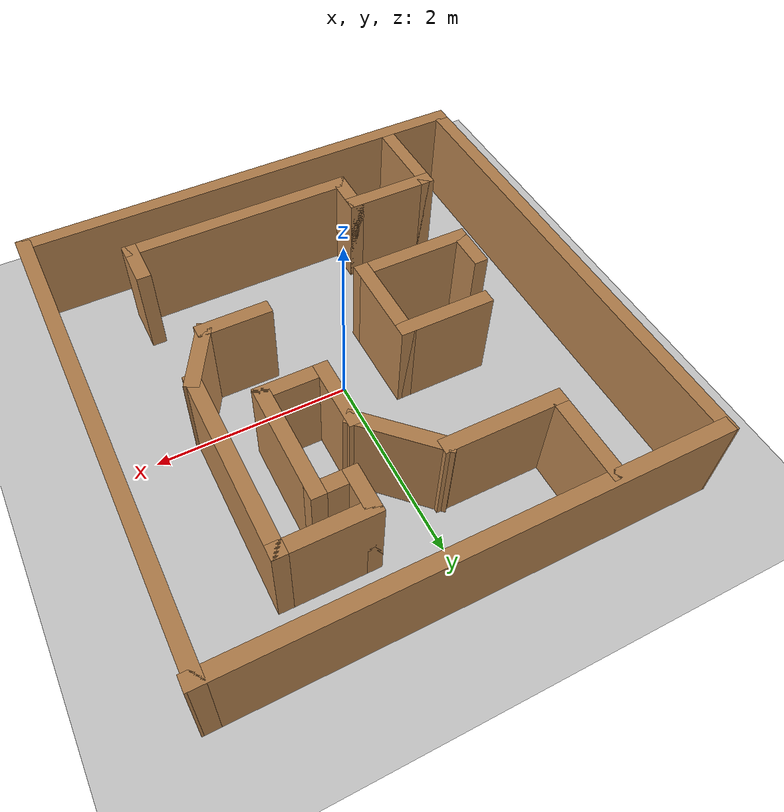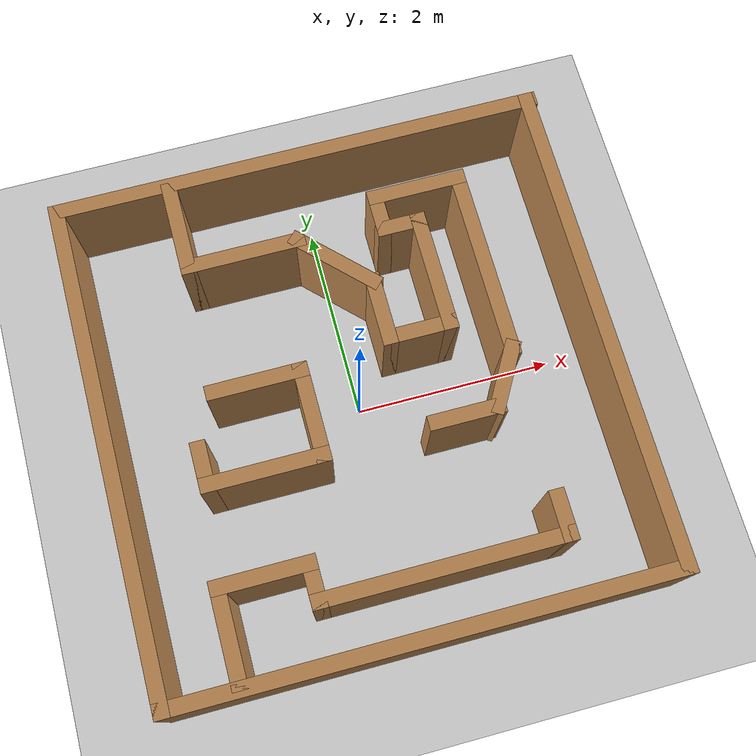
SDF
<sdf version="1.6">
 <world name="__default__">
  <gravity>0 0 -9.8</gravity>
  <magnetic_field>6e-06 2.3e-05 -4.2e-05</magnetic_field>
  <atmosphere type="adiabatic"/>
  <physics name="default_physics" default="0" type="ode">
   <max_step_size>0.001</max_step_size>
   <real_time_factor>1</real_time_factor>
   <real_time_update_rate>1000</real_time_update_rate>
  </physics>
  <scene><ambient>0.4 0.4 0.4 1</ambient><background>0.7 0.7 0.7 1</background><shadows>1</shadows></scene>
  <audio><device>default</device></audio>
  <spherical_coordinates>
   <surface_model>EARTH_WGS84</surface_model>
   <latitude_deg>0</latitude_deg>
   <longitude_deg>0</longitude_deg>
   <elevation>0</elevation>
   <heading_deg>0</heading_deg>
  </spherical_coordinates>
  <model name="Maze">
   <model name="my_world">
    <link name="Wall_14">
     <collision name="Wall_14_Collision">
      <geometry><box><size>5.04665 0.15 1</size></box></geometry>
      <pose>0 0 0.5 0 -0 0</pose>
     </collision>
     <visual name="Wall_14_Visual">
      <pose>0 0 0.5 0 -0 0</pose>
      <geometry><box><size>5.04665 0.15 1</size></box></geometry>
      <material>
       <script><uri>file://media/materials/scripts/gazebo.material</uri><name>Gazebo/Wood</name></script>
       <ambient>1 1 1 1</ambient>
      </material>
      <meta><layer>0</layer></meta>
     </visual>
     <pose>-2.43656 0 0 0 -0 -1.5708</pose>
    </link>
    <link name="Wall_15">
     <collision name="Wall_15_Collision">
      <geometry><box><size>5 0.15 1</size></box></geometry>
      <pose>0 0 0.5 0 -0 0</pose>
     </collision>
     <visual name="Wall_15_Visual">
      <pose>0 0 0.5 0 -0 0</pose>
      <geometry><box><size>5 0.15 1</size></box></geometry>
      <material>
       <script><uri>file://media/materials/scripts/gazebo.material</uri><name>Gazebo/Wood</name></script>
       <ambient>1 1 1 1</ambient>
      </material>
      <meta><layer>0</layer></meta>
     </visual>
     <pose>-0.011565 -2.44833 0 0 -0 0</pose>
    </link>
    <link name="Wall_16">
     <collision name="Wall_16_Collision">
      <geometry><box><size>5.04665 0.15 1</size></box></geometry>
      <pose>0 0 0.5 0 -0 0</pose>
     </collision>
     <visual name="Wall_16_Visual">
      <pose>0 0 0.5 0 -0 0</pose>
      <geometry><box><size>5.04665 0.15 1</size></box></geometry>
      <material>
       <script><uri>file://media/materials/scripts/gazebo.material</uri><name>Gazebo/Wood</name></script>
       <ambient>1 1 1 1</ambient>
      </material>
      <meta><layer>0</layer></meta>
     </visual>
     <pose>2.41344 0 0 0 -0 1.5708</pose>
    </link>
    <link name="Wall_18">
     <collision name="Wall_18_Collision">
      <geometry><box><size>5 0.15 1</size></box></geometry>
      <pose>0 0 0.5 0 -0 0</pose>
     </collision>
     <visual name="Wall_18_Visual">
      <pose>0 0 0.5 0 -0 0</pose>
      <geometry><box><size>5 0.15 1</size></box></geometry>
      <material>
       <script><uri>file://media/materials/scripts/gazebo.material</uri><name>Gazebo/Wood</name></script>
       <ambient>1 1 1 1</ambient>
      </material>
      <meta><layer>0</layer></meta>
     </visual>
     <pose>0.011565 2.44833 0 0 -0 3.14159</pose>
    </link>
    <link name="Wall_22">
     <collision name="Wall_22_Collision">
      <geometry><box><size>1 0.15 1</size></box></geometry>
      <pose>0 0 0.5 0 -0 0</pose>
     </collision>
     <visual name="Wall_22_Visual">
      <pose>0 0 0.5 0 -0 0</pose>
      <geometry><box><size>1 0.15 1</size></box></geometry>
      <material>
       <script><uri>file://media/materials/scripts/gazebo.material</uri><name>Gazebo/Wood</name></script>
       <ambient>1 1 1 1</ambient>
      </material>
      <meta><layer>0</layer></meta>
     </visual>
     <pose>-1.72656 -1.96333 0 0 -0 1.5708</pose>
    </link>
    <link name="Wall_23">
     <collision name="Wall_23_Collision">
      <geometry><box><size>1 0.15 1</size></box></geometry>
      <pose>0 0 0.5 0 -0 0</pose>
     </collision>
     <visual name="Wall_23_Visual">
      <pose>0 0 0.5 0 -0 0</pose>
      <geometry><box><size>1 0.15 1</size></box></geometry>
      <material>
       <script><uri>file://media/materials/scripts/gazebo.material</uri><name>Gazebo/Wood</name></script>
       <ambient>1 1 1 1</ambient>
      </material>
      <meta><layer>0</layer></meta>
     </visual>
     <pose>-1.30157 -1.53833 0 0 -0 0</pose>
    </link>
    <link name="Wall_24">
     <collision name="Wall_24_Collision">
      <geometry><box><size>0.5 0.15 1</size></box></geometry>
      <pose>0 0 0.5 0 -0 0</pose>
     </collision>
     <visual name="Wall_24_Visual">
      <pose>0 0 0.5 0 -0 0</pose>
      <geometry><box><size>0.5 0.15 1</size></box></geometry>
      <material>
       <script><uri>file://media/materials/scripts/gazebo.material</uri><name>Gazebo/Wood</name></script>
       <ambient>1 1 1 1</ambient>
      </material>
      <meta><layer>0</layer></meta>
     </visual>
     <pose>-0.876565 -1.71333 0 0 -0 -1.5708</pose>
    </link>
    <link name="Wall_25">
     <collision name="Wall_25_Collision">
      <geometry><box><size>2.5 0.15 1</size></box></geometry>
      <pose>0 0 0.5 0 -0 0</pose>
     </collision>
     <visual name="Wall_25_Visual">
      <pose>0 0 0.5 0 -0 0</pose>
      <geometry><box><size>2.5 0.15 1</size></box></geometry>
      <material>
       <script><uri>file://media/materials/scripts/gazebo.material</uri><name>Gazebo/Wood</name></script>
       <ambient>1 1 1 1</ambient>
      </material>
      <meta><layer>0</layer></meta>
     </visual>
     <pose>0.298435 -1.88833 0 0 -0 0</pose>
    </link>
    <link name="Wall_26">
     <collision name="Wall_26_Collision">
      <geometry><box><size>0.5 0.15 1</size></box></geometry>
      <pose>0 0 0.5 0 -0 0</pose>
     </collision>
     <visual name="Wall_26_Visual">
      <pose>0 0 0.5 0 -0 0</pose>
      <geometry><box><size>0.5 0.15 1</size></box></geometry>
      <material>
       <script><uri>file://media/materials/scripts/gazebo.material</uri><name>Gazebo/Wood</name></script>
       <ambient>1 1 1 1</ambient>
      </material>
      <meta><layer>0</layer></meta>
     </visual>
     <pose>1.47344 -1.71333 0 0 -0 1.5708</pose>
    </link>
    <link name="Wall_28">
     <collision name="Wall_28_Collision">
      <geometry><box><size>1 0.15 1</size></box></geometry>
      <pose>0 0 0.5 0 -0 0</pose>
     </collision>
     <visual name="Wall_28_Visual">
      <pose>0 0 0.5 0 -0 0</pose>
      <geometry><box><size>1 0.15 1</size></box></geometry>
      <material>
       <script><uri>file://media/materials/scripts/gazebo.material</uri><name>Gazebo/Wood</name></script>
       <ambient>1 1 1 1</ambient>
      </material>
      <meta><layer>0</layer></meta>
     </visual>
     <pose>-0.931565 0.248674 0 0 -0 0</pose>
    </link>
    <link name="Wall_29">
     <collision name="Wall_29_Collision">
      <geometry><box><size>1 0.15 1</size></box></geometry>
      <pose>0 0 0.5 0 -0 0</pose>
     </collision>
     <visual name="Wall_29_Visual">
      <pose>0 0 0.5 0 -0 0</pose>
      <geometry><box><size>1 0.15 1</size></box></geometry>
      <material>
       <script><uri>file://media/materials/scripts/gazebo.material</uri><name>Gazebo/Wood</name></script>
       <ambient>1 1 1 1</ambient>
      </material>
      <meta><layer>0</layer></meta>
     </visual>
     <pose>-0.506565 -0.176326 0 0 -0 -1.5708</pose>
    </link>
    <link name="Wall_30">
     <collision name="Wall_30_Collision">
      <geometry><box><size>1.25 0.15 1</size></box></geometry>
      <pose>0 0 0.5 0 -0 0</pose>
     </collision>
     <visual name="Wall_30_Visual">
      <pose>0 0 0.5 0 -0 0</pose>
      <geometry><box><size>1.25 0.15 1</size></box></geometry>
      <material>
       <script><uri>file://media/materials/scripts/gazebo.material</uri><name>Gazebo/Wood</name></script>
       <ambient>1 1 1 1</ambient>
      </material>
      <meta><layer>0</layer></meta>
     </visual>
     <pose>-1.05656 -0.601326 0 0 -0 3.14159</pose>
    </link>
    <link name="Wall_32">
     <collision name="Wall_32_Collision">
      <geometry><box><size>0.5 0.15 1</size></box></geometry>
      <pose>0 0 0.5 0 -0 0</pose>
     </collision>
     <visual name="Wall_32_Visual">
      <pose>0 0 0.5 0 -0 0</pose>
      <geometry><box><size>0.5 0.15 1</size></box></geometry>
      <material>
       <script><uri>file://media/materials/scripts/gazebo.material</uri><name>Gazebo/Wood</name></script>
       <ambient>1 1 1 1</ambient>
      </material>
      <meta><layer>0</layer></meta>
     </visual>
     <pose>-1.60657 -0.426326 0 0 -0 1.5708</pose>
    </link>
    <link name="Wall_34">
     <collision name="Wall_34_Collision">
      <geometry><box><size>1 0.15 1</size></box></geometry>
      <pose>0 0 0.5 0 -0 0</pose>
     </collision>
     <visual name="Wall_34_Visual">
      <pose>0 0 0.5 0 -0 0</pose>
      <geometry><box><size>1 0.15 1</size></box></geometry>
      <material>
       <script><uri>file://media/materials/scripts/gazebo.material</uri><name>Gazebo/Wood</name></script>
       <ambient>1 1 1 1</ambient>
      </material>
      <meta><layer>0</layer></meta>
     </visual>
     <pose>-1.30957 1.97467 0 0 -0 -1.5708</pose>
    </link>
    <link name="Wall_35">
     <collision name="Wall_35_Collision">
      <geometry><box><size>1.25 0.15 1</size></box></geometry>
      <pose>0 0 0.5 0 -0 0</pose>
     </collision>
     <visual name="Wall_35_Visual">
      <pose>0 0 0.5 0 -0 0</pose>
      <geometry><box><size>1.25 0.15 1</size></box></geometry>
      <material>
       <script><uri>file://media/materials/scripts/gazebo.material</uri><name>Gazebo/Wood</name></script>
       <ambient>1 1 1 1</ambient>
      </material>
      <meta><layer>0</layer></meta>
     </visual>
     <pose>-0.759565 1.54967 0 0 -0 0</pose>
    </link>
    <link name="Wall_36">
     <collision name="Wall_36_Collision">
      <geometry><box><size>1 0.15 1</size></box></geometry>
      <pose>0 0 0.5 0 -0 0</pose>
     </collision>
     <visual name="Wall_36_Visual">
      <pose>0 0 0.5 0 -0 0</pose>
      <geometry><box><size>1 0.15 1</size></box></geometry>
      <material>
       <script><uri>file://media/materials/scripts/gazebo.material</uri><name>Gazebo/Wood</name></script>
       <ambient>1 1 1 1</ambient>
      </material>
      <meta><layer>0</layer></meta>
     </visual>
     <pose>0.090935 1.24917 0 0 -0 -0.785398</pose>
    </link>
    <link name="Wall_37">
     <collision name="Wall_37_Collision">
      <geometry><box><size>0.75 0.15 1</size></box></geometry>
      <pose>0 0 0.5 0 -0 0</pose>
     </collision>
     <visual name="Wall_37_Visual">
      <pose>0 0 0.5 0 -0 0</pose>
      <geometry><box><size>0.75 0.15 1</size></box></geometry>
      <material>
       <script><uri>file://media/materials/scripts/gazebo.material</uri><name>Gazebo/Wood</name></script>
       <ambient>1 1 1 1</ambient>
      </material>
      <meta><layer>0</layer></meta>
     </visual>
     <pose>0.391435 0.648674 0 0 -0 -1.5708</pose>
    </link>
    <link name="Wall_38">
     <collision name="Wall_38_Collision">
      <geometry><box><size>0.75 0.15 1</size></box></geometry>
      <pose>0 0 0.5 0 -0 0</pose>
     </collision>
     <visual name="Wall_38_Visual">
      <pose>0 0 0.5 0 -0 0</pose>
      <geometry><box><size>0.75 0.15 1</size></box></geometry>
      <material>
       <script><uri>file://media/materials/scripts/gazebo.material</uri><name>Gazebo/Wood</name></script>
       <ambient>1 1 1 1</ambient>
      </material>
      <meta><layer>0</layer></meta>
     </visual>
     <pose>0.691435 0.348674 0 0 -0 0</pose>
    </link>
    <link name="Wall_43">
     <collision name="Wall_43_Collision">
      <geometry><box><size>1.25 0.15 1</size></box></geometry>
      <pose>0 0 0.5 0 -0 0</pose>
     </collision>
     <visual name="Wall_43_Visual">
      <pose>0 0 0.5 0 -0 0</pose>
      <geometry><box><size>1.25 0.15 1</size></box></geometry>
      <material>
       <script><uri>file://media/materials/scripts/gazebo.material</uri><name>Gazebo/Wood</name></script>
       <ambient>1 1 1 1</ambient>
      </material>
      <meta><layer>0</layer></meta>
     </visual>
     <pose>0.991435 0.898674 0 0 -0 1.5708</pose>
    </link>
    <link name="Wall_44">
     <collision name="Wall_44_Collision">
      <geometry><box><size>0.5 0.15 1</size></box></geometry>
      <pose>0 0 0.5 0 -0 0</pose>
     </collision>
     <visual name="Wall_44_Visual">
      <pose>0 0 0.5 0 -0 0</pose>
      <geometry><box><size>0.5 0.15 1</size></box></geometry>
      <material>
       <script><uri>file://media/materials/scripts/gazebo.material</uri><name>Gazebo/Wood</name></script>
       <ambient>1 1 1 1</ambient>
      </material>
      <meta><layer>0</layer></meta>
     </visual>
     <pose>0.816435 1.44867 0 0 -0 3.14159</pose>
    </link>
    <link name="Wall_45">
     <collision name="Wall_45_Collision">
      <geometry><box><size>0.5 0.15 1</size></box></geometry>
      <pose>0 0 0.5 0 -0 0</pose>
     </collision>
     <visual name="Wall_45_Visual">
      <pose>0 0 0.5 0 -0 0</pose>
      <geometry><box><size>0.5 0.15 1</size></box></geometry>
      <material>
       <script><uri>file://media/materials/scripts/gazebo.material</uri><name>Gazebo/Wood</name></script>
       <ambient>1 1 1 1</ambient>
      </material>
      <meta><layer>0</layer></meta>
     </visual>
     <pose>0.641435 1.62367 0 0 -0 1.5708</pose>
    </link>
    <link name="Wall_46">
     <collision name="Wall_46_Collision">
      <geometry><box><size>1 0.15 1</size></box></geometry>
      <pose>0 0 0.5 0 -0 0</pose>
     </collision>
     <visual name="Wall_46_Visual">
      <pose>0 0 0.5 0 -0 0</pose>
      <geometry><box><size>1 0.15 1</size></box></geometry>
      <material>
       <script><uri>file://media/materials/scripts/gazebo.material</uri><name>Gazebo/Wood</name></script>
       <ambient>1 1 1 1</ambient>
      </material>
      <meta><layer>0</layer></meta>
     </visual>
     <pose>1.06644 1.79867 0 0 -0 0</pose>
    </link>
    <link name="Wall_47">
     <collision name="Wall_47_Collision">
      <geometry><box><size>2 0.15 1</size></box></geometry>
      <pose>0 0 0.5 0 -0 0</pose>
     </collision>
     <visual name="Wall_47_Visual">
      <pose>0 0 0.5 0 -0 0</pose>
      <geometry><box><size>2 0.15 1</size></box></geometry>
      <material>
       <script><uri>file://media/materials/scripts/gazebo.material</uri><name>Gazebo/Wood</name></script>
       <ambient>1 1 1 1</ambient>
      </material>
      <meta><layer>0</layer></meta>
     </visual>
     <pose>1.49144 0.873674 0 0 -0 -1.5708</pose>
    </link>
    <link name="Wall_48">
     <collision name="Wall_48_Collision">
      <geometry><box><size>0.75 0.15 1</size></box></geometry>
      <pose>0 0 0.5 0 -0 0</pose>
     </collision>
     <visual name="Wall_48_Visual">
      <pose>0 0 0.5 0 -0 0</pose>
      <geometry><box><size>0.75 0.15 1</size></box></geometry>
      <material>
       <script><uri>file://media/materials/scripts/gazebo.material</uri><name>Gazebo/Wood</name></script>
       <ambient>1 1 1 1</ambient>
      </material>
      <meta><layer>0</layer></meta>
     </visual>
     <pose>1.34143 -0.310826 0 0 -0 -2.09491</pose>
    </link>
    <link name="Wall_49">
     <collision name="Wall_49_Collision">
      <geometry><box><size>0.75 0.15 1</size></box></geometry>
      <pose>0 0 0.5 0 -0 0</pose>
     </collision>
     <visual name="Wall_49_Visual">
      <pose>0 0 0.5 0 -0 0</pose>
      <geometry><box><size>0.75 0.15 1</size></box></geometry>
      <material>
       <script><uri>file://media/materials/scripts/gazebo.material</uri><name>Gazebo/Wood</name></script>
       <ambient>1 1 1 1</ambient>
      </material>
      <meta><layer>0</layer></meta>
     </visual>
     <pose>0.891435 -0.570326 0 0 -0 3.14159</pose>
    </link>
    <static>1</static>
   </model>
   <static>0</static>
   <pose>0.001225 0.025801 0 0 -0 0</pose>
  </model>
  <include><uri>model://ground_plane</uri></include>
  <include><uri>model://sun</uri></include>
 </world>
</sdf>
